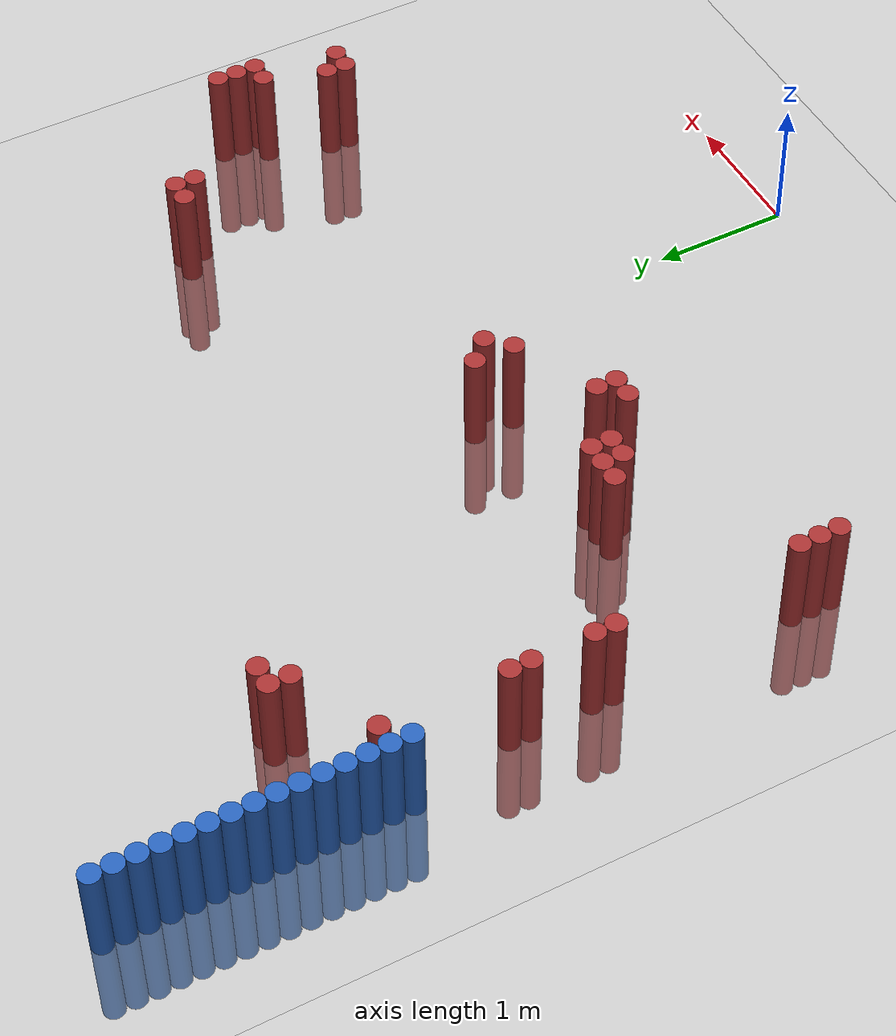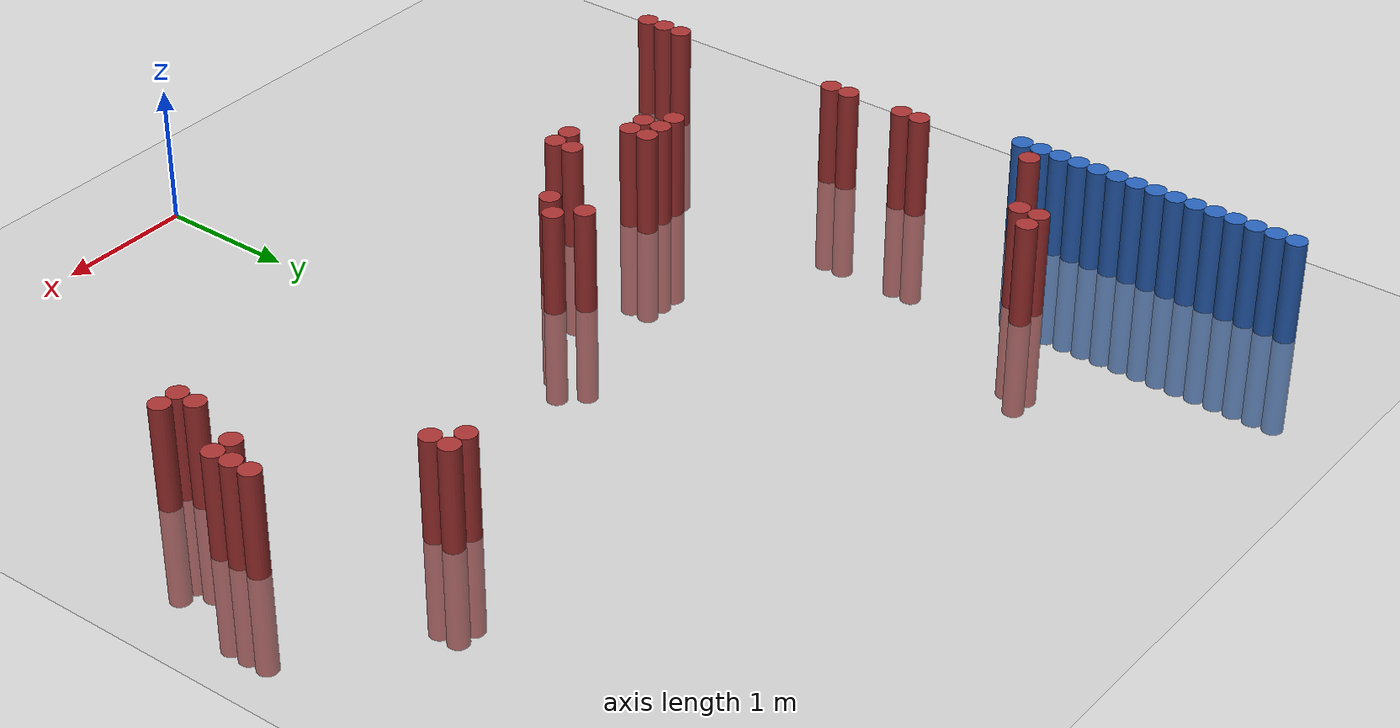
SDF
<sdf version="1.6">
 <world name="default">
  <model name="ground_plane">
   <static>1</static>
   <link name="link">
    <collision name="collision">
     <geometry><plane><normal>0 0 1</normal><size>100 100</size></plane></geometry>
     <surface><friction><ode><mu>100</mu><mu2>50</mu2></ode></friction></surface>
    </collision>
    <visual name="visual">
     <cast_shadows>0</cast_shadows>
     <geometry><plane><normal>0 0 1</normal><size>100 100</size></plane></geometry>
     <material>
      <script><uri>file://media/materials/scripts/gazebo.material</uri><name>Gazebo/Grey</name></script>
     </material>
    </visual>
   </link>
  </model>
  <model name="unit_cylinder_179">
   <static>1</static>
   <pose>-3.425000 4.825000 0.000000 0.000000 0.000000 0.000000</pose>
   <link name="link">
    <inertial>
     <mass>1</mass>
     <inertia><ixx>0.145833</ixx><ixy>0</ixy><ixz>0</ixz><iyy>0.145833</iyy><iyz>0</iyz><izz>0.125</izz></inertia>
    </inertial>
    <collision name="collision">
     <geometry><cylinder><radius>0.075000</radius><length>1.5</length></cylinder></geometry>
    </collision>
    <visual name="visual">
     <geometry><cylinder><radius>0.075000</radius><length>1.5</length></cylinder></geometry>
     <material>
      <ambient>0.152000 0.379000 0.720000 1</ambient>
      <diffuse>0.152000 0.379000 0.720000 1</diffuse>
     </material>
     <material>
      <script><name>Gazebo/Grey</name><uri>file://media/materials/scripts/gazebo.material</uri></script>
     </material>
    </visual>
   </link>
  </model>
  <model name="unit_cylinder_181">
   <static>1</static>
   <pose>-3.425000 4.975000 0.000000 0.000000 0.000000 0.000000</pose>
   <link name="link">
    <inertial>
     <mass>1</mass>
     <inertia><ixx>0.145833</ixx><ixy>0</ixy><ixz>0</ixz><iyy>0.145833</iyy><iyz>0</iyz><izz>0.125</izz></inertia>
    </inertial>
    <collision name="collision">
     <geometry><cylinder><radius>0.075000</radius><length>1.5</length></cylinder></geometry>
    </collision>
    <visual name="visual">
     <geometry><cylinder><radius>0.075000</radius><length>1.5</length></cylinder></geometry>
     <material>
      <ambient>0.152000 0.379000 0.720000 1</ambient>
      <diffuse>0.152000 0.379000 0.720000 1</diffuse>
     </material>
     <material>
      <script><name>Gazebo/Grey</name><uri>file://media/materials/scripts/gazebo.material</uri></script>
     </material>
    </visual>
   </link>
  </model>
  <model name="unit_cylinder_183">
   <static>1</static>
   <pose>-3.425000 5.125000 0.000000 0.000000 0.000000 0.000000</pose>
   <link name="link">
    <inertial>
     <mass>1</mass>
     <inertia><ixx>0.145833</ixx><ixy>0</ixy><ixz>0</ixz><iyy>0.145833</iyy><iyz>0</iyz><izz>0.125</izz></inertia>
    </inertial>
    <collision name="collision">
     <geometry><cylinder><radius>0.075000</radius><length>1.5</length></cylinder></geometry>
    </collision>
    <visual name="visual">
     <geometry><cylinder><radius>0.075000</radius><length>1.5</length></cylinder></geometry>
     <material>
      <ambient>0.152000 0.379000 0.720000 1</ambient>
      <diffuse>0.152000 0.379000 0.720000 1</diffuse>
     </material>
     <material>
      <script><name>Gazebo/Grey</name><uri>file://media/materials/scripts/gazebo.material</uri></script>
     </material>
    </visual>
   </link>
  </model>
  <model name="unit_cylinder_185">
   <static>1</static>
   <pose>-3.425000 5.275000 0.000000 0.000000 0.000000 0.000000</pose>
   <link name="link">
    <inertial>
     <mass>1</mass>
     <inertia><ixx>0.145833</ixx><ixy>0</ixy><ixz>0</ixz><iyy>0.145833</iyy><iyz>0</iyz><izz>0.125</izz></inertia>
    </inertial>
    <collision name="collision">
     <geometry><cylinder><radius>0.075000</radius><length>1.5</length></cylinder></geometry>
    </collision>
    <visual name="visual">
     <geometry><cylinder><radius>0.075000</radius><length>1.5</length></cylinder></geometry>
     <material>
      <ambient>0.152000 0.379000 0.720000 1</ambient>
      <diffuse>0.152000 0.379000 0.720000 1</diffuse>
     </material>
     <material>
      <script><name>Gazebo/Grey</name><uri>file://media/materials/scripts/gazebo.material</uri></script>
     </material>
    </visual>
   </link>
  </model>
  <model name="unit_cylinder_187">
   <static>1</static>
   <pose>-3.425000 5.425000 0.000000 0.000000 0.000000 0.000000</pose>
   <link name="link">
    <inertial>
     <mass>1</mass>
     <inertia><ixx>0.145833</ixx><ixy>0</ixy><ixz>0</ixz><iyy>0.145833</iyy><iyz>0</iyz><izz>0.125</izz></inertia>
    </inertial>
    <collision name="collision">
     <geometry><cylinder><radius>0.075000</radius><length>1.5</length></cylinder></geometry>
    </collision>
    <visual name="visual">
     <geometry><cylinder><radius>0.075000</radius><length>1.5</length></cylinder></geometry>
     <material>
      <ambient>0.152000 0.379000 0.720000 1</ambient>
      <diffuse>0.152000 0.379000 0.720000 1</diffuse>
     </material>
     <material>
      <script><name>Gazebo/Grey</name><uri>file://media/materials/scripts/gazebo.material</uri></script>
     </material>
    </visual>
   </link>
  </model>
  <model name="unit_cylinder_189">
   <static>1</static>
   <pose>-3.425000 5.575000 0.000000 0.000000 0.000000 0.000000</pose>
   <link name="link">
    <inertial>
     <mass>1</mass>
     <inertia><ixx>0.145833</ixx><ixy>0</ixy><ixz>0</ixz><iyy>0.145833</iyy><iyz>0</iyz><izz>0.125</izz></inertia>
    </inertial>
    <collision name="collision">
     <geometry><cylinder><radius>0.075000</radius><length>1.5</length></cylinder></geometry>
    </collision>
    <visual name="visual">
     <geometry><cylinder><radius>0.075000</radius><length>1.5</length></cylinder></geometry>
     <material>
      <ambient>0.152000 0.379000 0.720000 1</ambient>
      <diffuse>0.152000 0.379000 0.720000 1</diffuse>
     </material>
     <material>
      <script><name>Gazebo/Grey</name><uri>file://media/materials/scripts/gazebo.material</uri></script>
     </material>
    </visual>
   </link>
  </model>
  <model name="unit_cylinder_191">
   <static>1</static>
   <pose>-3.425000 5.725000 0.000000 0.000000 0.000000 0.000000</pose>
   <link name="link">
    <inertial>
     <mass>1</mass>
     <inertia><ixx>0.145833</ixx><ixy>0</ixy><ixz>0</ixz><iyy>0.145833</iyy><iyz>0</iyz><izz>0.125</izz></inertia>
    </inertial>
    <collision name="collision">
     <geometry><cylinder><radius>0.075000</radius><length>1.5</length></cylinder></geometry>
    </collision>
    <visual name="visual">
     <geometry><cylinder><radius>0.075000</radius><length>1.5</length></cylinder></geometry>
     <material>
      <ambient>0.152000 0.379000 0.720000 1</ambient>
      <diffuse>0.152000 0.379000 0.720000 1</diffuse>
     </material>
     <material>
      <script><name>Gazebo/Grey</name><uri>file://media/materials/scripts/gazebo.material</uri></script>
     </material>
    </visual>
   </link>
  </model>
  <model name="unit_cylinder_193">
   <static>1</static>
   <pose>-3.425000 5.875000 0.000000 0.000000 0.000000 0.000000</pose>
   <link name="link">
    <inertial>
     <mass>1</mass>
     <inertia><ixx>0.145833</ixx><ixy>0</ixy><ixz>0</ixz><iyy>0.145833</iyy><iyz>0</iyz><izz>0.125</izz></inertia>
    </inertial>
    <collision name="collision">
     <geometry><cylinder><radius>0.075000</radius><length>1.5</length></cylinder></geometry>
    </collision>
    <visual name="visual">
     <geometry><cylinder><radius>0.075000</radius><length>1.5</length></cylinder></geometry>
     <material>
      <ambient>0.152000 0.379000 0.720000 1</ambient>
      <diffuse>0.152000 0.379000 0.720000 1</diffuse>
     </material>
     <material>
      <script><name>Gazebo/Grey</name><uri>file://media/materials/scripts/gazebo.material</uri></script>
     </material>
    </visual>
   </link>
  </model>
  <model name="unit_cylinder_195">
   <static>1</static>
   <pose>-3.425000 6.025000 0.000000 0.000000 0.000000 0.000000</pose>
   <link name="link">
    <inertial>
     <mass>1</mass>
     <inertia><ixx>0.145833</ixx><ixy>0</ixy><ixz>0</ixz><iyy>0.145833</iyy><iyz>0</iyz><izz>0.125</izz></inertia>
    </inertial>
    <collision name="collision">
     <geometry><cylinder><radius>0.075000</radius><length>1.5</length></cylinder></geometry>
    </collision>
    <visual name="visual">
     <geometry><cylinder><radius>0.075000</radius><length>1.5</length></cylinder></geometry>
     <material>
      <ambient>0.152000 0.379000 0.720000 1</ambient>
      <diffuse>0.152000 0.379000 0.720000 1</diffuse>
     </material>
     <material>
      <script><name>Gazebo/Grey</name><uri>file://media/materials/scripts/gazebo.material</uri></script>
     </material>
    </visual>
   </link>
  </model>
  <model name="unit_cylinder_197">
   <static>1</static>
   <pose>-3.425000 6.175000 0.000000 0.000000 0.000000 0.000000</pose>
   <link name="link">
    <inertial>
     <mass>1</mass>
     <inertia><ixx>0.145833</ixx><ixy>0</ixy><ixz>0</ixz><iyy>0.145833</iyy><iyz>0</iyz><izz>0.125</izz></inertia>
    </inertial>
    <collision name="collision">
     <geometry><cylinder><radius>0.075000</radius><length>1.5</length></cylinder></geometry>
    </collision>
    <visual name="visual">
     <geometry><cylinder><radius>0.075000</radius><length>1.5</length></cylinder></geometry>
     <material>
      <ambient>0.152000 0.379000 0.720000 1</ambient>
      <diffuse>0.152000 0.379000 0.720000 1</diffuse>
     </material>
     <material>
      <script><name>Gazebo/Grey</name><uri>file://media/materials/scripts/gazebo.material</uri></script>
     </material>
    </visual>
   </link>
  </model>
  <model name="unit_cylinder_199">
   <static>1</static>
   <pose>-3.425000 6.325000 0.000000 0.000000 0.000000 0.000000</pose>
   <link name="link">
    <inertial>
     <mass>1</mass>
     <inertia><ixx>0.145833</ixx><ixy>0</ixy><ixz>0</ixz><iyy>0.145833</iyy><iyz>0</iyz><izz>0.125</izz></inertia>
    </inertial>
    <collision name="collision">
     <geometry><cylinder><radius>0.075000</radius><length>1.5</length></cylinder></geometry>
    </collision>
    <visual name="visual">
     <geometry><cylinder><radius>0.075000</radius><length>1.5</length></cylinder></geometry>
     <material>
      <ambient>0.152000 0.379000 0.720000 1</ambient>
      <diffuse>0.152000 0.379000 0.720000 1</diffuse>
     </material>
     <material>
      <script><name>Gazebo/Grey</name><uri>file://media/materials/scripts/gazebo.material</uri></script>
     </material>
    </visual>
   </link>
  </model>
  <model name="unit_cylinder_201">
   <static>1</static>
   <pose>-3.425000 6.475000 0.000000 0.000000 0.000000 0.000000</pose>
   <link name="link">
    <inertial>
     <mass>1</mass>
     <inertia><ixx>0.145833</ixx><ixy>0</ixy><ixz>0</ixz><iyy>0.145833</iyy><iyz>0</iyz><izz>0.125</izz></inertia>
    </inertial>
    <collision name="collision">
     <geometry><cylinder><radius>0.075000</radius><length>1.5</length></cylinder></geometry>
    </collision>
    <visual name="visual">
     <geometry><cylinder><radius>0.075000</radius><length>1.5</length></cylinder></geometry>
     <material>
      <ambient>0.152000 0.379000 0.720000 1</ambient>
      <diffuse>0.152000 0.379000 0.720000 1</diffuse>
     </material>
     <material>
      <script><name>Gazebo/Grey</name><uri>file://media/materials/scripts/gazebo.material</uri></script>
     </material>
    </visual>
   </link>
  </model>
  <model name="unit_cylinder_203">
   <static>1</static>
   <pose>-3.425000 6.625000 0.000000 0.000000 0.000000 0.000000</pose>
   <link name="link">
    <inertial>
     <mass>1</mass>
     <inertia><ixx>0.145833</ixx><ixy>0</ixy><ixz>0</ixz><iyy>0.145833</iyy><iyz>0</iyz><izz>0.125</izz></inertia>
    </inertial>
    <collision name="collision">
     <geometry><cylinder><radius>0.075000</radius><length>1.5</length></cylinder></geometry>
    </collision>
    <visual name="visual">
     <geometry><cylinder><radius>0.075000</radius><length>1.5</length></cylinder></geometry>
     <material>
      <ambient>0.152000 0.379000 0.720000 1</ambient>
      <diffuse>0.152000 0.379000 0.720000 1</diffuse>
     </material>
     <material>
      <script><name>Gazebo/Grey</name><uri>file://media/materials/scripts/gazebo.material</uri></script>
     </material>
    </visual>
   </link>
  </model>
  <model name="unit_cylinder_205">
   <static>1</static>
   <pose>-3.425000 6.775000 0.000000 0.000000 0.000000 0.000000</pose>
   <link name="link">
    <inertial>
     <mass>1</mass>
     <inertia><ixx>0.145833</ixx><ixy>0</ixy><ixz>0</ixz><iyy>0.145833</iyy><iyz>0</iyz><izz>0.125</izz></inertia>
    </inertial>
    <collision name="collision">
     <geometry><cylinder><radius>0.075000</radius><length>1.5</length></cylinder></geometry>
    </collision>
    <visual name="visual">
     <geometry><cylinder><radius>0.075000</radius><length>1.5</length></cylinder></geometry>
     <material>
      <ambient>0.152000 0.379000 0.720000 1</ambient>
      <diffuse>0.152000 0.379000 0.720000 1</diffuse>
     </material>
     <material>
      <script><name>Gazebo/Grey</name><uri>file://media/materials/scripts/gazebo.material</uri></script>
     </material>
    </visual>
   </link>
  </model>
  <model name="unit_cylinder_207">
   <static>1</static>
   <pose>-3.425000 6.925000 0.000000 0.000000 0.000000 0.000000</pose>
   <link name="link">
    <inertial>
     <mass>1</mass>
     <inertia><ixx>0.145833</ixx><ixy>0</ixy><ixz>0</ixz><iyy>0.145833</iyy><iyz>0</iyz><izz>0.125</izz></inertia>
    </inertial>
    <collision name="collision">
     <geometry><cylinder><radius>0.075000</radius><length>1.5</length></cylinder></geometry>
    </collision>
    <visual name="visual">
     <geometry><cylinder><radius>0.075000</radius><length>1.5</length></cylinder></geometry>
     <material>
      <ambient>0.152000 0.379000 0.720000 1</ambient>
      <diffuse>0.152000 0.379000 0.720000 1</diffuse>
     </material>
     <material>
      <script><name>Gazebo/Grey</name><uri>file://media/materials/scripts/gazebo.material</uri></script>
     </material>
    </visual>
   </link>
  </model>
  <model name="unit_cylinder_253">
   <static>1</static>
   <pose>-3.425000 4.825000 0.000000 0.000000 0.000000 0.000000</pose>
   <link name="link">
    <inertial>
     <mass>1</mass>
     <inertia><ixx>0.145833</ixx><ixy>0</ixy><ixz>0</ixz><iyy>0.145833</iyy><iyz>0</iyz><izz>0.125</izz></inertia>
    </inertial>
    <collision name="collision">
     <geometry><cylinder><radius>0.075000</radius><length>1.5</length></cylinder></geometry>
    </collision>
    <visual name="visual">
     <geometry><cylinder><radius>0.075000</radius><length>1.5</length></cylinder></geometry>
     <material>
      <ambient>0.152000 0.379000 0.720000 1</ambient>
      <diffuse>0.152000 0.379000 0.720000 1</diffuse>
     </material>
     <material>
      <script><name>Gazebo/Grey</name><uri>file://media/materials/scripts/gazebo.material</uri></script>
     </material>
    </visual>
   </link>
  </model>
  <model name="unit_cylinder_254">
   <static>1</static>
   <pose>-3.425000 4.975000 0.000000 0.000000 0.000000 0.000000</pose>
   <link name="link">
    <inertial>
     <mass>1</mass>
     <inertia><ixx>0.145833</ixx><ixy>0</ixy><ixz>0</ixz><iyy>0.145833</iyy><iyz>0</iyz><izz>0.125</izz></inertia>
    </inertial>
    <collision name="collision">
     <geometry><cylinder><radius>0.075000</radius><length>1.5</length></cylinder></geometry>
    </collision>
    <visual name="visual">
     <geometry><cylinder><radius>0.075000</radius><length>1.5</length></cylinder></geometry>
     <material>
      <ambient>0.152000 0.379000 0.720000 1</ambient>
      <diffuse>0.152000 0.379000 0.720000 1</diffuse>
     </material>
     <material>
      <script><name>Gazebo/Grey</name><uri>file://media/materials/scripts/gazebo.material</uri></script>
     </material>
    </visual>
   </link>
  </model>
  <model name="unit_cylinder_255">
   <static>1</static>
   <pose>-3.425000 5.125000 0.000000 0.000000 0.000000 0.000000</pose>
   <link name="link">
    <inertial>
     <mass>1</mass>
     <inertia><ixx>0.145833</ixx><ixy>0</ixy><ixz>0</ixz><iyy>0.145833</iyy><iyz>0</iyz><izz>0.125</izz></inertia>
    </inertial>
    <collision name="collision">
     <geometry><cylinder><radius>0.075000</radius><length>1.5</length></cylinder></geometry>
    </collision>
    <visual name="visual">
     <geometry><cylinder><radius>0.075000</radius><length>1.5</length></cylinder></geometry>
     <material>
      <ambient>0.152000 0.379000 0.720000 1</ambient>
      <diffuse>0.152000 0.379000 0.720000 1</diffuse>
     </material>
     <material>
      <script><name>Gazebo/Grey</name><uri>file://media/materials/scripts/gazebo.material</uri></script>
     </material>
    </visual>
   </link>
  </model>
  <model name="unit_cylinder_256">
   <static>1</static>
   <pose>-3.425000 5.275000 0.000000 0.000000 0.000000 0.000000</pose>
   <link name="link">
    <inertial>
     <mass>1</mass>
     <inertia><ixx>0.145833</ixx><ixy>0</ixy><ixz>0</ixz><iyy>0.145833</iyy><iyz>0</iyz><izz>0.125</izz></inertia>
    </inertial>
    <collision name="collision">
     <geometry><cylinder><radius>0.075000</radius><length>1.5</length></cylinder></geometry>
    </collision>
    <visual name="visual">
     <geometry><cylinder><radius>0.075000</radius><length>1.5</length></cylinder></geometry>
     <material>
      <ambient>0.152000 0.379000 0.720000 1</ambient>
      <diffuse>0.152000 0.379000 0.720000 1</diffuse>
     </material>
     <material>
      <script><name>Gazebo/Grey</name><uri>file://media/materials/scripts/gazebo.material</uri></script>
     </material>
    </visual>
   </link>
  </model>
  <model name="unit_cylinder_257">
   <static>1</static>
   <pose>-3.425000 5.425000 0.000000 0.000000 0.000000 0.000000</pose>
   <link name="link">
    <inertial>
     <mass>1</mass>
     <inertia><ixx>0.145833</ixx><ixy>0</ixy><ixz>0</ixz><iyy>0.145833</iyy><iyz>0</iyz><izz>0.125</izz></inertia>
    </inertial>
    <collision name="collision">
     <geometry><cylinder><radius>0.075000</radius><length>1.5</length></cylinder></geometry>
    </collision>
    <visual name="visual">
     <geometry><cylinder><radius>0.075000</radius><length>1.5</length></cylinder></geometry>
     <material>
      <ambient>0.152000 0.379000 0.720000 1</ambient>
      <diffuse>0.152000 0.379000 0.720000 1</diffuse>
     </material>
     <material>
      <script><name>Gazebo/Grey</name><uri>file://media/materials/scripts/gazebo.material</uri></script>
     </material>
    </visual>
   </link>
  </model>
  <model name="unit_cylinder_263">
   <static>1</static>
   <pose>-3.275000 1.675000 0.000000 0.000000 0.000000 0.000000</pose>
   <link name="link">
    <inertial>
     <mass>1</mass>
     <inertia><ixx>0.145833</ixx><ixy>0</ixy><ixz>0</ixz><iyy>0.145833</iyy><iyz>0</iyz><izz>0.125</izz></inertia>
    </inertial>
    <collision name="collision">
     <geometry><cylinder><radius>0.075000</radius><length>1.5</length></cylinder></geometry>
    </collision>
    <visual name="visual">
     <geometry><cylinder><radius>0.075000</radius><length>1.5</length></cylinder></geometry>
     <material>
      <ambient>0.648000 0.192000 0.192000 1</ambient>
      <diffuse>0.648000 0.192000 0.192000 1</diffuse>
     </material>
     <material>
      <script><name>Gazebo/Grey</name><uri>file://media/materials/scripts/gazebo.material</uri></script>
     </material>
    </visual>
   </link>
  </model>
  <model name="unit_cylinder_264">
   <static>1</static>
   <pose>-3.275000 1.825000 0.000000 0.000000 0.000000 0.000000</pose>
   <link name="link">
    <inertial>
     <mass>1</mass>
     <inertia><ixx>0.145833</ixx><ixy>0</ixy><ixz>0</ixz><iyy>0.145833</iyy><iyz>0</iyz><izz>0.125</izz></inertia>
    </inertial>
    <collision name="collision">
     <geometry><cylinder><radius>0.075000</radius><length>1.5</length></cylinder></geometry>
    </collision>
    <visual name="visual">
     <geometry><cylinder><radius>0.075000</radius><length>1.5</length></cylinder></geometry>
     <material>
      <ambient>0.648000 0.192000 0.192000 1</ambient>
      <diffuse>0.648000 0.192000 0.192000 1</diffuse>
     </material>
     <material>
      <script><name>Gazebo/Grey</name><uri>file://media/materials/scripts/gazebo.material</uri></script>
     </material>
    </visual>
   </link>
  </model>
  <model name="unit_cylinder_265">
   <static>1</static>
   <pose>-3.275000 1.975000 0.000000 0.000000 0.000000 0.000000</pose>
   <link name="link">
    <inertial>
     <mass>1</mass>
     <inertia><ixx>0.145833</ixx><ixy>0</ixy><ixz>0</ixz><iyy>0.145833</iyy><iyz>0</iyz><izz>0.125</izz></inertia>
    </inertial>
    <collision name="collision">
     <geometry><cylinder><radius>0.075000</radius><length>1.5</length></cylinder></geometry>
    </collision>
    <visual name="visual">
     <geometry><cylinder><radius>0.075000</radius><length>1.5</length></cylinder></geometry>
     <material>
      <ambient>0.648000 0.192000 0.192000 1</ambient>
      <diffuse>0.648000 0.192000 0.192000 1</diffuse>
     </material>
     <material>
      <script><name>Gazebo/Grey</name><uri>file://media/materials/scripts/gazebo.material</uri></script>
     </material>
    </visual>
   </link>
  </model>
  <model name="unit_cylinder_266">
   <static>1</static>
   <pose>-3.275000 3.325000 0.000000 0.000000 0.000000 0.000000</pose>
   <link name="link">
    <inertial>
     <mass>1</mass>
     <inertia><ixx>0.145833</ixx><ixy>0</ixy><ixz>0</ixz><iyy>0.145833</iyy><iyz>0</iyz><izz>0.125</izz></inertia>
    </inertial>
    <collision name="collision">
     <geometry><cylinder><radius>0.075000</radius><length>1.5</length></cylinder></geometry>
    </collision>
    <visual name="visual">
     <geometry><cylinder><radius>0.075000</radius><length>1.5</length></cylinder></geometry>
     <material>
      <ambient>0.648000 0.192000 0.192000 1</ambient>
      <diffuse>0.648000 0.192000 0.192000 1</diffuse>
     </material>
     <material>
      <script><name>Gazebo/Grey</name><uri>file://media/materials/scripts/gazebo.material</uri></script>
     </material>
    </visual>
   </link>
  </model>
  <model name="unit_cylinder_267">
   <static>1</static>
   <pose>-3.275000 3.475000 0.000000 0.000000 0.000000 0.000000</pose>
   <link name="link">
    <inertial>
     <mass>1</mass>
     <inertia><ixx>0.145833</ixx><ixy>0</ixy><ixz>0</ixz><iyy>0.145833</iyy><iyz>0</iyz><izz>0.125</izz></inertia>
    </inertial>
    <collision name="collision">
     <geometry><cylinder><radius>0.075000</radius><length>1.5</length></cylinder></geometry>
    </collision>
    <visual name="visual">
     <geometry><cylinder><radius>0.075000</radius><length>1.5</length></cylinder></geometry>
     <material>
      <ambient>0.648000 0.192000 0.192000 1</ambient>
      <diffuse>0.648000 0.192000 0.192000 1</diffuse>
     </material>
     <material>
      <script><name>Gazebo/Grey</name><uri>file://media/materials/scripts/gazebo.material</uri></script>
     </material>
    </visual>
   </link>
  </model>
  <model name="unit_cylinder_268">
   <static>1</static>
   <pose>-3.275000 3.925000 0.000000 0.000000 0.000000 0.000000</pose>
   <link name="link">
    <inertial>
     <mass>1</mass>
     <inertia><ixx>0.145833</ixx><ixy>0</ixy><ixz>0</ixz><iyy>0.145833</iyy><iyz>0</iyz><izz>0.125</izz></inertia>
    </inertial>
    <collision name="collision">
     <geometry><cylinder><radius>0.075000</radius><length>1.5</length></cylinder></geometry>
    </collision>
    <visual name="visual">
     <geometry><cylinder><radius>0.075000</radius><length>1.5</length></cylinder></geometry>
     <material>
      <ambient>0.648000 0.192000 0.192000 1</ambient>
      <diffuse>0.648000 0.192000 0.192000 1</diffuse>
     </material>
     <material>
      <script><name>Gazebo/Grey</name><uri>file://media/materials/scripts/gazebo.material</uri></script>
     </material>
    </visual>
   </link>
  </model>
  <model name="unit_cylinder_269">
   <static>1</static>
   <pose>-3.275000 4.075000 0.000000 0.000000 0.000000 0.000000</pose>
   <link name="link">
    <inertial>
     <mass>1</mass>
     <inertia><ixx>0.145833</ixx><ixy>0</ixy><ixz>0</ixz><iyy>0.145833</iyy><iyz>0</iyz><izz>0.125</izz></inertia>
    </inertial>
    <collision name="collision">
     <geometry><cylinder><radius>0.075000</radius><length>1.5</length></cylinder></geometry>
    </collision>
    <visual name="visual">
     <geometry><cylinder><radius>0.075000</radius><length>1.5</length></cylinder></geometry>
     <material>
      <ambient>0.648000 0.192000 0.192000 1</ambient>
      <diffuse>0.648000 0.192000 0.192000 1</diffuse>
     </material>
     <material>
      <script><name>Gazebo/Grey</name><uri>file://media/materials/scripts/gazebo.material</uri></script>
     </material>
    </visual>
   </link>
  </model>
  <model name="unit_cylinder_270">
   <static>1</static>
   <pose>-3.275000 4.975000 0.000000 0.000000 0.000000 0.000000</pose>
   <link name="link">
    <inertial>
     <mass>1</mass>
     <inertia><ixx>0.145833</ixx><ixy>0</ixy><ixz>0</ixz><iyy>0.145833</iyy><iyz>0</iyz><izz>0.125</izz></inertia>
    </inertial>
    <collision name="collision">
     <geometry><cylinder><radius>0.075000</radius><length>1.5</length></cylinder></geometry>
    </collision>
    <visual name="visual">
     <geometry><cylinder><radius>0.075000</radius><length>1.5</length></cylinder></geometry>
     <material>
      <ambient>0.648000 0.192000 0.192000 1</ambient>
      <diffuse>0.648000 0.192000 0.192000 1</diffuse>
     </material>
     <material>
      <script><name>Gazebo/Grey</name><uri>file://media/materials/scripts/gazebo.material</uri></script>
     </material>
    </visual>
   </link>
  </model>
  <model name="unit_cylinder_276">
   <static>1</static>
   <pose>-2.675000 5.275000 0.000000 0.000000 0.000000 0.000000</pose>
   <link name="link">
    <inertial>
     <mass>1</mass>
     <inertia><ixx>0.145833</ixx><ixy>0</ixy><ixz>0</ixz><iyy>0.145833</iyy><iyz>0</iyz><izz>0.125</izz></inertia>
    </inertial>
    <collision name="collision">
     <geometry><cylinder><radius>0.075000</radius><length>1.5</length></cylinder></geometry>
    </collision>
    <visual name="visual">
     <geometry><cylinder><radius>0.075000</radius><length>1.5</length></cylinder></geometry>
     <material>
      <ambient>0.648000 0.192000 0.192000 1</ambient>
      <diffuse>0.648000 0.192000 0.192000 1</diffuse>
     </material>
     <material>
      <script><name>Gazebo/Grey</name><uri>file://media/materials/scripts/gazebo.material</uri></script>
     </material>
    </visual>
   </link>
  </model>
  <model name="unit_cylinder_277">
   <static>1</static>
   <pose>-2.675000 5.425000 0.000000 0.000000 0.000000 0.000000</pose>
   <link name="link">
    <inertial>
     <mass>1</mass>
     <inertia><ixx>0.145833</ixx><ixy>0</ixy><ixz>0</ixz><iyy>0.145833</iyy><iyz>0</iyz><izz>0.125</izz></inertia>
    </inertial>
    <collision name="collision">
     <geometry><cylinder><radius>0.075000</radius><length>1.5</length></cylinder></geometry>
    </collision>
    <visual name="visual">
     <geometry><cylinder><radius>0.075000</radius><length>1.5</length></cylinder></geometry>
     <material>
      <ambient>0.648000 0.192000 0.192000 1</ambient>
      <diffuse>0.648000 0.192000 0.192000 1</diffuse>
     </material>
     <material>
      <script><name>Gazebo/Grey</name><uri>file://media/materials/scripts/gazebo.material</uri></script>
     </material>
    </visual>
   </link>
  </model>
  <model name="unit_cylinder_278">
   <static>1</static>
   <pose>-2.525000 5.425000 0.000000 0.000000 0.000000 0.000000</pose>
   <link name="link">
    <inertial>
     <mass>1</mass>
     <inertia><ixx>0.145833</ixx><ixy>0</ixy><ixz>0</ixz><iyy>0.145833</iyy><iyz>0</iyz><izz>0.125</izz></inertia>
    </inertial>
    <collision name="collision">
     <geometry><cylinder><radius>0.075000</radius><length>1.5</length></cylinder></geometry>
    </collision>
    <visual name="visual">
     <geometry><cylinder><radius>0.075000</radius><length>1.5</length></cylinder></geometry>
     <material>
      <ambient>0.648000 0.192000 0.192000 1</ambient>
      <diffuse>0.648000 0.192000 0.192000 1</diffuse>
     </material>
     <material>
      <script><name>Gazebo/Grey</name><uri>file://media/materials/scripts/gazebo.material</uri></script>
     </material>
    </visual>
   </link>
  </model>
  <model name="unit_cylinder_282">
   <static>1</static>
   <pose>-2.225000 2.725000 0.000000 0.000000 0.000000 0.000000</pose>
   <link name="link">
    <inertial>
     <mass>1</mass>
     <inertia><ixx>0.145833</ixx><ixy>0</ixy><ixz>0</ixz><iyy>0.145833</iyy><iyz>0</iyz><izz>0.125</izz></inertia>
    </inertial>
    <collision name="collision">
     <geometry><cylinder><radius>0.075000</radius><length>1.5</length></cylinder></geometry>
    </collision>
    <visual name="visual">
     <geometry><cylinder><radius>0.075000</radius><length>1.5</length></cylinder></geometry>
     <material>
      <ambient>0.648000 0.192000 0.192000 1</ambient>
      <diffuse>0.648000 0.192000 0.192000 1</diffuse>
     </material>
     <material>
      <script><name>Gazebo/Grey</name><uri>file://media/materials/scripts/gazebo.material</uri></script>
     </material>
    </visual>
   </link>
  </model>
  <model name="unit_cylinder_283">
   <static>1</static>
   <pose>-2.075000 2.575000 0.000000 0.000000 0.000000 0.000000</pose>
   <link name="link">
    <inertial>
     <mass>1</mass>
     <inertia><ixx>0.145833</ixx><ixy>0</ixy><ixz>0</ixz><iyy>0.145833</iyy><iyz>0</iyz><izz>0.125</izz></inertia>
    </inertial>
    <collision name="collision">
     <geometry><cylinder><radius>0.075000</radius><length>1.5</length></cylinder></geometry>
    </collision>
    <visual name="visual">
     <geometry><cylinder><radius>0.075000</radius><length>1.5</length></cylinder></geometry>
     <material>
      <ambient>0.648000 0.192000 0.192000 1</ambient>
      <diffuse>0.648000 0.192000 0.192000 1</diffuse>
     </material>
     <material>
      <script><name>Gazebo/Grey</name><uri>file://media/materials/scripts/gazebo.material</uri></script>
     </material>
    </visual>
   </link>
  </model>
  <model name="unit_cylinder_284">
   <static>1</static>
   <pose>-2.075000 2.725000 0.000000 0.000000 0.000000 0.000000</pose>
   <link name="link">
    <inertial>
     <mass>1</mass>
     <inertia><ixx>0.145833</ixx><ixy>0</ixy><ixz>0</ixz><iyy>0.145833</iyy><iyz>0</iyz><izz>0.125</izz></inertia>
    </inertial>
    <collision name="collision">
     <geometry><cylinder><radius>0.075000</radius><length>1.5</length></cylinder></geometry>
    </collision>
    <visual name="visual">
     <geometry><cylinder><radius>0.075000</radius><length>1.5</length></cylinder></geometry>
     <material>
      <ambient>0.648000 0.192000 0.192000 1</ambient>
      <diffuse>0.648000 0.192000 0.192000 1</diffuse>
     </material>
     <material>
      <script><name>Gazebo/Grey</name><uri>file://media/materials/scripts/gazebo.material</uri></script>
     </material>
    </visual>
   </link>
  </model>
  <model name="unit_cylinder_285">
   <static>1</static>
   <pose>-1.925000 2.575000 0.000000 0.000000 0.000000 0.000000</pose>
   <link name="link">
    <inertial>
     <mass>1</mass>
     <inertia><ixx>0.145833</ixx><ixy>0</ixy><ixz>0</ixz><iyy>0.145833</iyy><iyz>0</iyz><izz>0.125</izz></inertia>
    </inertial>
    <collision name="collision">
     <geometry><cylinder><radius>0.075000</radius><length>1.5</length></cylinder></geometry>
    </collision>
    <visual name="visual">
     <geometry><cylinder><radius>0.075000</radius><length>1.5</length></cylinder></geometry>
     <material>
      <ambient>0.648000 0.192000 0.192000 1</ambient>
      <diffuse>0.648000 0.192000 0.192000 1</diffuse>
     </material>
     <material>
      <script><name>Gazebo/Grey</name><uri>file://media/materials/scripts/gazebo.material</uri></script>
     </material>
    </visual>
   </link>
  </model>
  <model name="unit_cylinder_286">
   <static>1</static>
   <pose>-1.925000 2.725000 0.000000 0.000000 0.000000 0.000000</pose>
   <link name="link">
    <inertial>
     <mass>1</mass>
     <inertia><ixx>0.145833</ixx><ixy>0</ixy><ixz>0</ixz><iyy>0.145833</iyy><iyz>0</iyz><izz>0.125</izz></inertia>
    </inertial>
    <collision name="collision">
     <geometry><cylinder><radius>0.075000</radius><length>1.5</length></cylinder></geometry>
    </collision>
    <visual name="visual">
     <geometry><cylinder><radius>0.075000</radius><length>1.5</length></cylinder></geometry>
     <material>
      <ambient>0.648000 0.192000 0.192000 1</ambient>
      <diffuse>0.648000 0.192000 0.192000 1</diffuse>
     </material>
     <material>
      <script><name>Gazebo/Grey</name><uri>file://media/materials/scripts/gazebo.material</uri></script>
     </material>
    </visual>
   </link>
  </model>
  <model name="unit_cylinder_287">
   <static>1</static>
   <pose>-1.625000 2.275000 0.000000 0.000000 0.000000 0.000000</pose>
   <link name="link">
    <inertial>
     <mass>1</mass>
     <inertia><ixx>0.145833</ixx><ixy>0</ixy><ixz>0</ixz><iyy>0.145833</iyy><iyz>0</iyz><izz>0.125</izz></inertia>
    </inertial>
    <collision name="collision">
     <geometry><cylinder><radius>0.075000</radius><length>1.5</length></cylinder></geometry>
    </collision>
    <visual name="visual">
     <geometry><cylinder><radius>0.075000</radius><length>1.5</length></cylinder></geometry>
     <material>
      <ambient>0.648000 0.192000 0.192000 1</ambient>
      <diffuse>0.648000 0.192000 0.192000 1</diffuse>
     </material>
     <material>
      <script><name>Gazebo/Grey</name><uri>file://media/materials/scripts/gazebo.material</uri></script>
     </material>
    </visual>
   </link>
  </model>
  <model name="unit_cylinder_288">
   <static>1</static>
   <pose>-1.475000 2.275000 0.000000 0.000000 0.000000 0.000000</pose>
   <link name="link">
    <inertial>
     <mass>1</mass>
     <inertia><ixx>0.145833</ixx><ixy>0</ixy><ixz>0</ixz><iyy>0.145833</iyy><iyz>0</iyz><izz>0.125</izz></inertia>
    </inertial>
    <collision name="collision">
     <geometry><cylinder><radius>0.075000</radius><length>1.5</length></cylinder></geometry>
    </collision>
    <visual name="visual">
     <geometry><cylinder><radius>0.075000</radius><length>1.5</length></cylinder></geometry>
     <material>
      <ambient>0.648000 0.192000 0.192000 1</ambient>
      <diffuse>0.648000 0.192000 0.192000 1</diffuse>
     </material>
     <material>
      <script><name>Gazebo/Grey</name><uri>file://media/materials/scripts/gazebo.material</uri></script>
     </material>
    </visual>
   </link>
  </model>
  <model name="unit_cylinder_289">
   <static>1</static>
   <pose>-1.475000 2.425000 0.000000 0.000000 0.000000 0.000000</pose>
   <link name="link">
    <inertial>
     <mass>1</mass>
     <inertia><ixx>0.145833</ixx><ixy>0</ixy><ixz>0</ixz><iyy>0.145833</iyy><iyz>0</iyz><izz>0.125</izz></inertia>
    </inertial>
    <collision name="collision">
     <geometry><cylinder><radius>0.075000</radius><length>1.5</length></cylinder></geometry>
    </collision>
    <visual name="visual">
     <geometry><cylinder><radius>0.075000</radius><length>1.5</length></cylinder></geometry>
     <material>
      <ambient>0.648000 0.192000 0.192000 1</ambient>
      <diffuse>0.648000 0.192000 0.192000 1</diffuse>
     </material>
     <material>
      <script><name>Gazebo/Grey</name><uri>file://media/materials/scripts/gazebo.material</uri></script>
     </material>
    </visual>
   </link>
  </model>
  <model name="unit_cylinder_290">
   <static>1</static>
   <pose>-0.875000 2.725000 0.000000 0.000000 0.000000 0.000000</pose>
   <link name="link">
    <inertial>
     <mass>1</mass>
     <inertia><ixx>0.145833</ixx><ixy>0</ixy><ixz>0</ixz><iyy>0.145833</iyy><iyz>0</iyz><izz>0.125</izz></inertia>
    </inertial>
    <collision name="collision">
     <geometry><cylinder><radius>0.075000</radius><length>1.5</length></cylinder></geometry>
    </collision>
    <visual name="visual">
     <geometry><cylinder><radius>0.075000</radius><length>1.5</length></cylinder></geometry>
     <material>
      <ambient>0.648000 0.192000 0.192000 1</ambient>
      <diffuse>0.648000 0.192000 0.192000 1</diffuse>
     </material>
     <material>
      <script><name>Gazebo/Grey</name><uri>file://media/materials/scripts/gazebo.material</uri></script>
     </material>
    </visual>
   </link>
  </model>
  <model name="unit_cylinder_291">
   <static>1</static>
   <pose>-0.875000 3.025000 0.000000 0.000000 0.000000 0.000000</pose>
   <link name="link">
    <inertial>
     <mass>1</mass>
     <inertia><ixx>0.145833</ixx><ixy>0</ixy><ixz>0</ixz><iyy>0.145833</iyy><iyz>0</iyz><izz>0.125</izz></inertia>
    </inertial>
    <collision name="collision">
     <geometry><cylinder><radius>0.075000</radius><length>1.5</length></cylinder></geometry>
    </collision>
    <visual name="visual">
     <geometry><cylinder><radius>0.075000</radius><length>1.5</length></cylinder></geometry>
     <material>
      <ambient>0.648000 0.192000 0.192000 1</ambient>
      <diffuse>0.648000 0.192000 0.192000 1</diffuse>
     </material>
     <material>
      <script><name>Gazebo/Grey</name><uri>file://media/materials/scripts/gazebo.material</uri></script>
     </material>
    </visual>
   </link>
  </model>
  <model name="unit_cylinder_292">
   <static>1</static>
   <pose>-0.725000 2.875000 0.000000 0.000000 0.000000 0.000000</pose>
   <link name="link">
    <inertial>
     <mass>1</mass>
     <inertia><ixx>0.145833</ixx><ixy>0</ixy><ixz>0</ixz><iyy>0.145833</iyy><iyz>0</iyz><izz>0.125</izz></inertia>
    </inertial>
    <collision name="collision">
     <geometry><cylinder><radius>0.075000</radius><length>1.5</length></cylinder></geometry>
    </collision>
    <visual name="visual">
     <geometry><cylinder><radius>0.075000</radius><length>1.5</length></cylinder></geometry>
     <material>
      <ambient>0.648000 0.192000 0.192000 1</ambient>
      <diffuse>0.648000 0.192000 0.192000 1</diffuse>
     </material>
     <material>
      <script><name>Gazebo/Grey</name><uri>file://media/materials/scripts/gazebo.material</uri></script>
     </material>
    </visual>
   </link>
  </model>
  <model name="unit_cylinder_313">
   <static>1</static>
   <pose>1.525000 4.075000 0.000000 0.000000 0.000000 0.000000</pose>
   <link name="link">
    <inertial>
     <mass>1</mass>
     <inertia><ixx>0.145833</ixx><ixy>0</ixy><ixz>0</ixz><iyy>0.145833</iyy><iyz>0</iyz><izz>0.125</izz></inertia>
    </inertial>
    <collision name="collision">
     <geometry><cylinder><radius>0.075000</radius><length>1.5</length></cylinder></geometry>
    </collision>
    <visual name="visual">
     <geometry><cylinder><radius>0.075000</radius><length>1.5</length></cylinder></geometry>
     <material>
      <ambient>0.648000 0.192000 0.192000 1</ambient>
      <diffuse>0.648000 0.192000 0.192000 1</diffuse>
     </material>
     <material>
      <script><name>Gazebo/Grey</name><uri>file://media/materials/scripts/gazebo.material</uri></script>
     </material>
    </visual>
   </link>
  </model>
  <model name="unit_cylinder_317">
   <static>1</static>
   <pose>1.675000 3.925000 0.000000 0.000000 0.000000 0.000000</pose>
   <link name="link">
    <inertial>
     <mass>1</mass>
     <inertia><ixx>0.145833</ixx><ixy>0</ixy><ixz>0</ixz><iyy>0.145833</iyy><iyz>0</iyz><izz>0.125</izz></inertia>
    </inertial>
    <collision name="collision">
     <geometry><cylinder><radius>0.075000</radius><length>1.5</length></cylinder></geometry>
    </collision>
    <visual name="visual">
     <geometry><cylinder><radius>0.075000</radius><length>1.5</length></cylinder></geometry>
     <material>
      <ambient>0.648000 0.192000 0.192000 1</ambient>
      <diffuse>0.648000 0.192000 0.192000 1</diffuse>
     </material>
     <material>
      <script><name>Gazebo/Grey</name><uri>file://media/materials/scripts/gazebo.material</uri></script>
     </material>
    </visual>
   </link>
  </model>
  <model name="unit_cylinder_318">
   <static>1</static>
   <pose>1.675000 4.075000 0.000000 0.000000 0.000000 0.000000</pose>
   <link name="link">
    <inertial>
     <mass>1</mass>
     <inertia><ixx>0.145833</ixx><ixy>0</ixy><ixz>0</ixz><iyy>0.145833</iyy><iyz>0</iyz><izz>0.125</izz></inertia>
    </inertial>
    <collision name="collision">
     <geometry><cylinder><radius>0.075000</radius><length>1.5</length></cylinder></geometry>
    </collision>
    <visual name="visual">
     <geometry><cylinder><radius>0.075000</radius><length>1.5</length></cylinder></geometry>
     <material>
      <ambient>0.648000 0.192000 0.192000 1</ambient>
      <diffuse>0.648000 0.192000 0.192000 1</diffuse>
     </material>
     <material>
      <script><name>Gazebo/Grey</name><uri>file://media/materials/scripts/gazebo.material</uri></script>
     </material>
    </visual>
   </link>
  </model>
  <model name="unit_cylinder_319">
   <static>1</static>
   <pose>2.275000 2.425000 0.000000 0.000000 0.000000 0.000000</pose>
   <link name="link">
    <inertial>
     <mass>1</mass>
     <inertia><ixx>0.145833</ixx><ixy>0</ixy><ixz>0</ixz><iyy>0.145833</iyy><iyz>0</iyz><izz>0.125</izz></inertia>
    </inertial>
    <collision name="collision">
     <geometry><cylinder><radius>0.075000</radius><length>1.5</length></cylinder></geometry>
    </collision>
    <visual name="visual">
     <geometry><cylinder><radius>0.075000</radius><length>1.5</length></cylinder></geometry>
     <material>
      <ambient>0.648000 0.192000 0.192000 1</ambient>
      <diffuse>0.648000 0.192000 0.192000 1</diffuse>
     </material>
     <material>
      <script><name>Gazebo/Grey</name><uri>file://media/materials/scripts/gazebo.material</uri></script>
     </material>
    </visual>
   </link>
  </model>
  <model name="unit_cylinder_320">
   <static>1</static>
   <pose>2.275000 2.575000 0.000000 0.000000 0.000000 0.000000</pose>
   <link name="link">
    <inertial>
     <mass>1</mass>
     <inertia><ixx>0.145833</ixx><ixy>0</ixy><ixz>0</ixz><iyy>0.145833</iyy><iyz>0</iyz><izz>0.125</izz></inertia>
    </inertial>
    <collision name="collision">
     <geometry><cylinder><radius>0.075000</radius><length>1.5</length></cylinder></geometry>
    </collision>
    <visual name="visual">
     <geometry><cylinder><radius>0.075000</radius><length>1.5</length></cylinder></geometry>
     <material>
      <ambient>0.648000 0.192000 0.192000 1</ambient>
      <diffuse>0.648000 0.192000 0.192000 1</diffuse>
     </material>
     <material>
      <script><name>Gazebo/Grey</name><uri>file://media/materials/scripts/gazebo.material</uri></script>
     </material>
    </visual>
   </link>
  </model>
  <model name="unit_cylinder_321">
   <static>1</static>
   <pose>2.425000 2.425000 0.000000 0.000000 0.000000 0.000000</pose>
   <link name="link">
    <inertial>
     <mass>1</mass>
     <inertia><ixx>0.145833</ixx><ixy>0</ixy><ixz>0</ixz><iyy>0.145833</iyy><iyz>0</iyz><izz>0.125</izz></inertia>
    </inertial>
    <collision name="collision">
     <geometry><cylinder><radius>0.075000</radius><length>1.5</length></cylinder></geometry>
    </collision>
    <visual name="visual">
     <geometry><cylinder><radius>0.075000</radius><length>1.5</length></cylinder></geometry>
     <material>
      <ambient>0.648000 0.192000 0.192000 1</ambient>
      <diffuse>0.648000 0.192000 0.192000 1</diffuse>
     </material>
     <material>
      <script><name>Gazebo/Grey</name><uri>file://media/materials/scripts/gazebo.material</uri></script>
     </material>
    </visual>
   </link>
  </model>
  <model name="unit_cylinder_322">
   <static>1</static>
   <pose>2.425000 3.025000 0.000000 0.000000 0.000000 0.000000</pose>
   <link name="link">
    <inertial>
     <mass>1</mass>
     <inertia><ixx>0.145833</ixx><ixy>0</ixy><ixz>0</ixz><iyy>0.145833</iyy><iyz>0</iyz><izz>0.125</izz></inertia>
    </inertial>
    <collision name="collision">
     <geometry><cylinder><radius>0.075000</radius><length>1.5</length></cylinder></geometry>
    </collision>
    <visual name="visual">
     <geometry><cylinder><radius>0.075000</radius><length>1.5</length></cylinder></geometry>
     <material>
      <ambient>0.648000 0.192000 0.192000 1</ambient>
      <diffuse>0.648000 0.192000 0.192000 1</diffuse>
     </material>
     <material>
      <script><name>Gazebo/Grey</name><uri>file://media/materials/scripts/gazebo.material</uri></script>
     </material>
    </visual>
   </link>
  </model>
  <model name="unit_cylinder_323">
   <static>1</static>
   <pose>2.575000 3.025000 0.000000 0.000000 0.000000 0.000000</pose>
   <link name="link">
    <inertial>
     <mass>1</mass>
     <inertia><ixx>0.145833</ixx><ixy>0</ixy><ixz>0</ixz><iyy>0.145833</iyy><iyz>0</iyz><izz>0.125</izz></inertia>
    </inertial>
    <collision name="collision">
     <geometry><cylinder><radius>0.075000</radius><length>1.5</length></cylinder></geometry>
    </collision>
    <visual name="visual">
     <geometry><cylinder><radius>0.075000</radius><length>1.5</length></cylinder></geometry>
     <material>
      <ambient>0.648000 0.192000 0.192000 1</ambient>
      <diffuse>0.648000 0.192000 0.192000 1</diffuse>
     </material>
     <material>
      <script><name>Gazebo/Grey</name><uri>file://media/materials/scripts/gazebo.material</uri></script>
     </material>
    </visual>
   </link>
  </model>
  <model name="unit_cylinder_324">
   <static>1</static>
   <pose>2.575000 3.175000 0.000000 0.000000 0.000000 0.000000</pose>
   <link name="link">
    <inertial>
     <mass>1</mass>
     <inertia><ixx>0.145833</ixx><ixy>0</ixy><ixz>0</ixz><iyy>0.145833</iyy><iyz>0</iyz><izz>0.125</izz></inertia>
    </inertial>
    <collision name="collision">
     <geometry><cylinder><radius>0.075000</radius><length>1.5</length></cylinder></geometry>
    </collision>
    <visual name="visual">
     <geometry><cylinder><radius>0.075000</radius><length>1.5</length></cylinder></geometry>
     <material>
      <ambient>0.648000 0.192000 0.192000 1</ambient>
      <diffuse>0.648000 0.192000 0.192000 1</diffuse>
     </material>
     <material>
      <script><name>Gazebo/Grey</name><uri>file://media/materials/scripts/gazebo.material</uri></script>
     </material>
    </visual>
   </link>
  </model>
  <model name="unit_cylinder_325">
   <static>1</static>
   <pose>2.575000 3.325000 0.000000 0.000000 0.000000 0.000000</pose>
   <link name="link">
    <inertial>
     <mass>1</mass>
     <inertia><ixx>0.145833</ixx><ixy>0</ixy><ixz>0</ixz><iyy>0.145833</iyy><iyz>0</iyz><izz>0.125</izz></inertia>
    </inertial>
    <collision name="collision">
     <geometry><cylinder><radius>0.075000</radius><length>1.5</length></cylinder></geometry>
    </collision>
    <visual name="visual">
     <geometry><cylinder><radius>0.075000</radius><length>1.5</length></cylinder></geometry>
     <material>
      <ambient>0.648000 0.192000 0.192000 1</ambient>
      <diffuse>0.648000 0.192000 0.192000 1</diffuse>
     </material>
     <material>
      <script><name>Gazebo/Grey</name><uri>file://media/materials/scripts/gazebo.material</uri></script>
     </material>
    </visual>
   </link>
  </model>
 </world>
</sdf>
